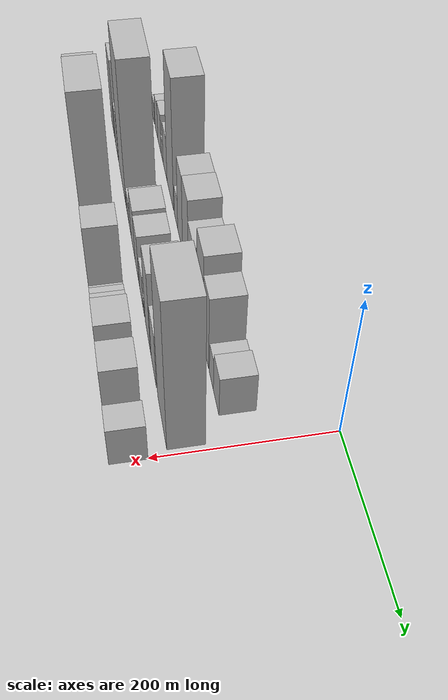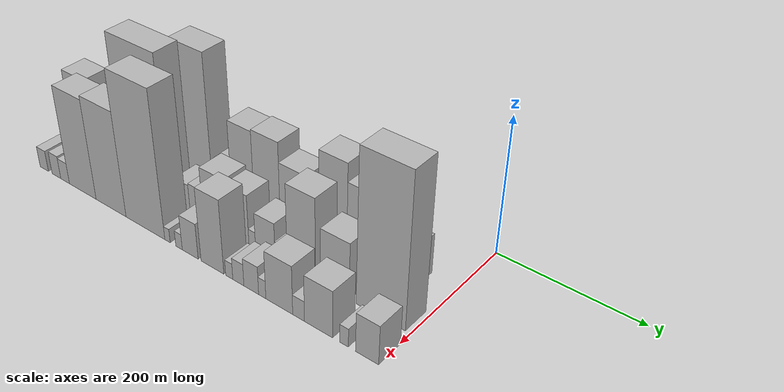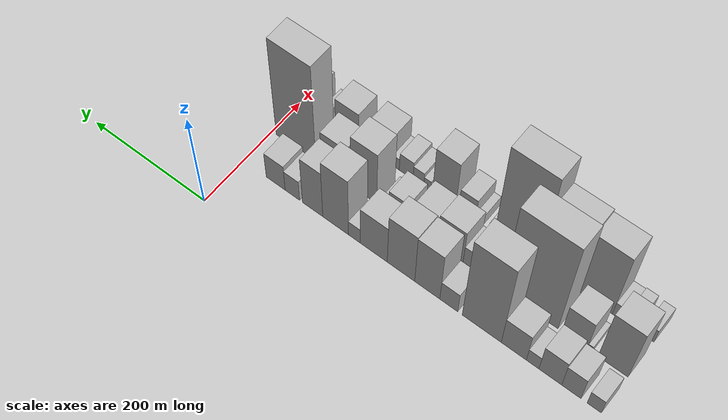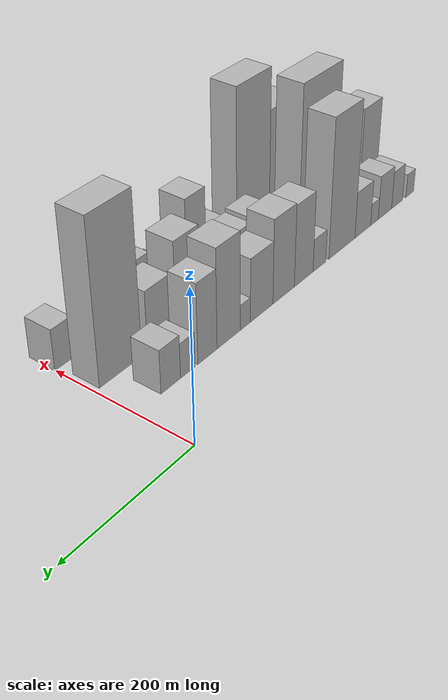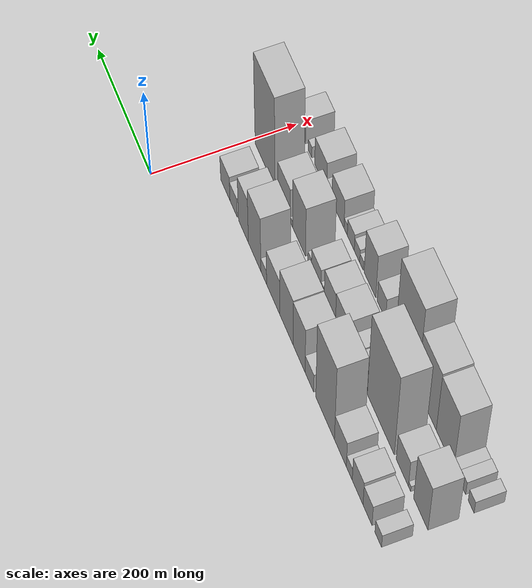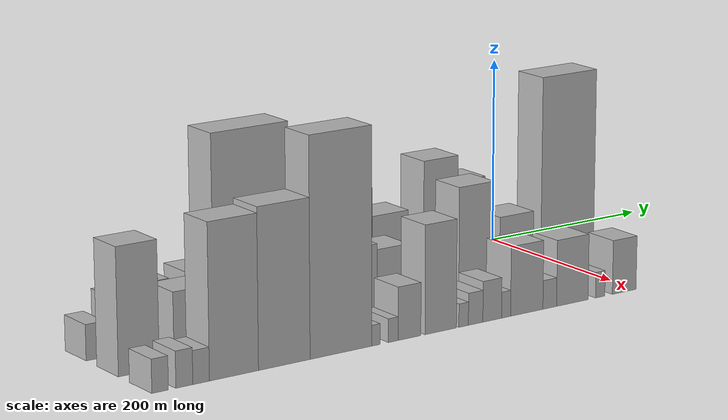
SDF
<sdf version="1.6">
 <world name="default">
  <model name="building_1">
   <static>1</static>
   <pose>100.0000 -569.5218 0 0.000000 0.000000 0.000000</pose>
   <link name="link">
    <pose>0 0 18.00 0 0 0</pose>
    <collision name="collision"><geometry><box><size>40.0000 20.9565 36.0000</size></box></geometry></collision>
    <visual name="visual">
     <cast_shadows>0</cast_shadows>
     <geometry><box><size>40.0000 20.9565 36.0000</size></box></geometry>
     <material>
      <script>
       <uri>model://HANNAS_wall/materials/scripts</uri>
       <uri>model://HANNAS_wall/materials/textures</uri>
       <name>vrc/HANNAS_wall</name>
      </script>
     </material>
    </visual>
   </link>
  </model>
  <model name="building_2">
   <static>1</static>
   <pose>100.0000 -535.7136 0 0.000000 0.000000 0.000000</pose>
   <link name="link">
    <pose>0 0 28.50 0 0 0</pose>
    <collision name="collision"><geometry><box><size>40.0000 28.6598 57.0000</size></box></geometry></collision>
    <visual name="visual">
     <cast_shadows>0</cast_shadows>
     <geometry><box><size>40.0000 28.6598 57.0000</size></box></geometry>
     <material>
      <script>
       <uri>model://HANNAS_wall/materials/scripts</uri>
       <uri>model://HANNAS_wall/materials/textures</uri>
       <name>vrc/HANNAS_wall</name>
      </script>
     </material>
    </visual>
   </link>
  </model>
  <model name="building_3">
   <static>1</static>
   <pose>100.0000 -504.2329 0 0.000000 0.000000 0.000000</pose>
   <link name="link">
    <pose>0 0 33.00 0 0 0</pose>
    <collision name="collision"><geometry><box><size>40.0000 34.3018 66.0000</size></box></geometry></collision>
    <visual name="visual">
     <cast_shadows>0</cast_shadows>
     <geometry><box><size>40.0000 34.3018 66.0000</size></box></geometry>
     <material>
      <script>
       <uri>model://HANNAS_wall/materials/scripts</uri>
       <uri>model://HANNAS_wall/materials/textures</uri>
       <name>vrc/HANNAS_wall</name>
      </script>
     </material>
    </visual>
   </link>
  </model>
  <model name="building_4">
   <static>1</static>
   <pose>100.0000 -477.5409 0 0.000000 0.000000 0.000000</pose>
   <link name="link">
    <pose>0 0 16.50 0 0 0</pose>
    <collision name="collision"><geometry><box><size>40.0000 19.0821 33.0000</size></box></geometry></collision>
    <visual name="visual">
     <cast_shadows>0</cast_shadows>
     <geometry><box><size>40.0000 19.0821 33.0000</size></box></geometry>
     <material>
      <script>
       <uri>model://HANNAS_wall/materials/scripts</uri>
       <uri>model://HANNAS_wall/materials/textures</uri>
       <name>vrc/HANNAS_wall</name>
      </script>
     </material>
    </visual>
   </link>
  </model>
  <model name="building_5">
   <static>1</static>
   <pose>100.0000 -448.7226 0 0.000000 0.000000 0.000000</pose>
   <link name="link">
    <pose>0 0 34.50 0 0 0</pose>
    <collision name="collision"><geometry><box><size>40.0000 38.5546 69.0000</size></box></geometry></collision>
    <visual name="visual">
     <cast_shadows>0</cast_shadows>
     <geometry><box><size>40.0000 38.5546 69.0000</size></box></geometry>
     <material>
      <script>
       <uri>model://HANNAS_wall/materials/scripts</uri>
       <uri>model://HANNAS_wall/materials/textures</uri>
       <name>vrc/HANNAS_wall</name>
      </script>
     </material>
    </visual>
   </link>
  </model>
  <model name="building_6">
   <static>1</static>
   <pose>100.0000 -398.8562 0 0.000000 0.000000 0.000000</pose>
   <link name="link">
    <pose>0 0 100.50 0 0 0</pose>
    <collision name="collision"><geometry><box><size>40.0000 61.1781 201.0000</size></box></geometry></collision>
    <visual name="visual">
     <cast_shadows>0</cast_shadows>
     <geometry><box><size>40.0000 61.1781 201.0000</size></box></geometry>
     <material>
      <script>
       <uri>model://HANNAS_wall/materials/scripts</uri>
       <uri>model://HANNAS_wall/materials/textures</uri>
       <name>vrc/HANNAS_wall</name>
      </script>
     </material>
    </visual>
   </link>
  </model>
  <model name="building_7">
   <static>1</static>
   <pose>100.0000 -346.9772 0 0.000000 0.000000 0.000000</pose>
   <link name="link">
    <pose>0 0 24.00 0 0 0</pose>
    <collision name="collision"><geometry><box><size>40.0000 28.5800 48.0000</size></box></geometry></collision>
    <visual name="visual">
     <cast_shadows>0</cast_shadows>
     <geometry><box><size>40.0000 28.5800 48.0000</size></box></geometry>
     <material>
      <script>
       <uri>model://HANNAS_wall/materials/scripts</uri>
       <uri>model://HANNAS_wall/materials/textures</uri>
       <name>vrc/HANNAS_wall</name>
      </script>
     </material>
    </visual>
   </link>
  </model>
  <model name="building_8">
   <static>1</static>
   <pose>100.0000 -312.4542 0 0.000000 0.000000 0.000000</pose>
   <link name="link">
    <pose>0 0 58.50 0 0 0</pose>
    <collision name="collision"><geometry><box><size>40.0000 40.4660 117.0000</size></box></geometry></collision>
    <visual name="visual">
     <cast_shadows>0</cast_shadows>
     <geometry><box><size>40.0000 40.4660 117.0000</size></box></geometry>
     <material>
      <script>
       <uri>model://HANNAS_wall/materials/scripts</uri>
       <uri>model://HANNAS_wall/materials/textures</uri>
       <name>vrc/HANNAS_wall</name>
      </script>
     </material>
    </visual>
   </link>
  </model>
  <model name="building_9">
   <static>1</static>
   <pose>100.0000 -269.7427 0 0.000000 0.000000 0.000000</pose>
   <link name="link">
    <pose>0 0 60.00 0 0 0</pose>
    <collision name="collision"><geometry><box><size>40.0000 44.9570 120.0000</size></box></geometry></collision>
    <visual name="visual">
     <cast_shadows>0</cast_shadows>
     <geometry><box><size>40.0000 44.9570 120.0000</size></box></geometry>
     <material>
      <script>
       <uri>model://HANNAS_wall/materials/scripts</uri>
       <uri>model://HANNAS_wall/materials/textures</uri>
       <name>vrc/HANNAS_wall</name>
      </script>
     </material>
    </visual>
   </link>
  </model>
  <model name="building_10">
   <static>1</static>
   <pose>100.0000 -224.6503 0 0.000000 0.000000 0.000000</pose>
   <link name="link">
    <pose>0 0 45.00 0 0 0</pose>
    <collision name="collision"><geometry><box><size>40.0000 45.2278 90.0000</size></box></geometry></collision>
    <visual name="visual">
     <cast_shadows>0</cast_shadows>
     <geometry><box><size>40.0000 45.2278 90.0000</size></box></geometry>
     <material>
      <script>
       <uri>model://HANNAS_wall/materials/scripts</uri>
       <uri>model://HANNAS_wall/materials/textures</uri>
       <name>vrc/HANNAS_wall</name>
      </script>
     </material>
    </visual>
   </link>
  </model>
  <model name="building_11">
   <static>1</static>
   <pose>100.0000 -192.2849 0 0.000000 0.000000 0.000000</pose>
   <link name="link">
    <pose>0 0 18.00 0 0 0</pose>
    <collision name="collision"><geometry><box><size>40.0000 19.5030 36.0000</size></box></geometry></collision>
    <visual name="visual">
     <cast_shadows>0</cast_shadows>
     <geometry><box><size>40.0000 19.5030 36.0000</size></box></geometry>
     <material>
      <script>
       <uri>model://HANNAS_wall/materials/scripts</uri>
       <uri>model://HANNAS_wall/materials/textures</uri>
       <name>vrc/HANNAS_wall</name>
      </script>
     </material>
    </visual>
   </link>
  </model>
  <model name="building_12">
   <static>1</static>
   <pose>100.0000 -160.6596 0 0.000000 0.000000 0.000000</pose>
   <link name="link">
    <pose>0 0 69.00 0 0 0</pose>
    <collision name="collision"><geometry><box><size>40.0000 43.7476 138.0000</size></box></geometry></collision>
    <visual name="visual">
     <cast_shadows>0</cast_shadows>
     <geometry><box><size>40.0000 43.7476 138.0000</size></box></geometry>
     <material>
      <script>
       <uri>model://HANNAS_wall/materials/scripts</uri>
       <uri>model://HANNAS_wall/materials/textures</uri>
       <name>vrc/HANNAS_wall</name>
      </script>
     </material>
    </visual>
   </link>
  </model>
  <model name="building_13">
   <static>1</static>
   <pose>100.0000 -121.3531 0 0.000000 0.000000 0.000000</pose>
   <link name="link">
    <pose>0 0 55.50 0 0 0</pose>
    <collision name="collision"><geometry><box><size>40.0000 34.8656 111.0000</size></box></geometry></collision>
    <visual name="visual">
     <cast_shadows>0</cast_shadows>
     <geometry><box><size>40.0000 34.8656 111.0000</size></box></geometry>
     <material>
      <script>
       <uri>model://HANNAS_wall/materials/scripts</uri>
       <uri>model://HANNAS_wall/materials/textures</uri>
       <name>vrc/HANNAS_wall</name>
      </script>
     </material>
    </visual>
   </link>
  </model>
  <model name="building_14">
   <static>1</static>
   <pose>100.0000 -86.2994 0 0.000000 0.000000 0.000000</pose>
   <link name="link">
    <pose>0 0 24.00 0 0 0</pose>
    <collision name="collision"><geometry><box><size>40.0000 25.2418 48.0000</size></box></geometry></collision>
    <visual name="visual">
     <cast_shadows>0</cast_shadows>
     <geometry><box><size>40.0000 25.2418 48.0000</size></box></geometry>
     <material>
      <script>
       <uri>model://HANNAS_wall/materials/scripts</uri>
       <uri>model://HANNAS_wall/materials/textures</uri>
       <name>vrc/HANNAS_wall</name>
      </script>
     </material>
    </visual>
   </link>
  </model>
  <model name="building_15">
   <static>1</static>
   <pose>100.0000 -57.0559 0 0.000000 0.000000 0.000000</pose>
   <link name="link">
    <pose>0 0 30.00 0 0 0</pose>
    <collision name="collision"><geometry><box><size>40.0000 33.2452 60.0000</size></box></geometry></collision>
    <visual name="visual">
     <cast_shadows>0</cast_shadows>
     <geometry><box><size>40.0000 33.2452 60.0000</size></box></geometry>
     <material>
      <script>
       <uri>model://HANNAS_wall/materials/scripts</uri>
       <uri>model://HANNAS_wall/materials/textures</uri>
       <name>vrc/HANNAS_wall</name>
      </script>
     </material>
    </visual>
   </link>
  </model>
  <model name="building_36">
   <static>1</static>
   <pose>160.0000 -557.7278 0 0.000000 0.000000 0.000000</pose>
   <link name="link">
    <pose>0 0 63.00 0 0 0</pose>
    <collision name="collision"><geometry><box><size>40.0000 44.5443 126.0000</size></box></geometry></collision>
    <visual name="visual">
     <cast_shadows>0</cast_shadows>
     <geometry><box><size>40.0000 44.5443 126.0000</size></box></geometry>
     <material>
      <script>
       <uri>model://HANNAS_wall/materials/scripts</uri>
       <uri>model://HANNAS_wall/materials/textures</uri>
       <name>vrc/HANNAS_wall</name>
      </script>
     </material>
    </visual>
   </link>
  </model>
  <model name="building_37">
   <static>1</static>
   <pose>160.0000 -522.8158 0 0.000000 0.000000 0.000000</pose>
   <link name="link">
    <pose>0 0 7.50 0 0 0</pose>
    <collision name="collision"><geometry><box><size>40.0000 7.2797 15.0000</size></box></geometry></collision>
    <visual name="visual">
     <cast_shadows>0</cast_shadows>
     <geometry><box><size>40.0000 7.2797 15.0000</size></box></geometry>
     <material>
      <script>
       <uri>model://HANNAS_wall/materials/scripts</uri>
       <uri>model://HANNAS_wall/materials/textures</uri>
       <name>vrc/HANNAS_wall</name>
      </script>
     </material>
    </visual>
   </link>
  </model>
  <model name="building_38">
   <static>1</static>
   <pose>160.0000 -499.9888 0 0.000000 0.000000 0.000000</pose>
   <link name="link">
    <pose>0 0 36.00 0 0 0</pose>
    <collision name="collision"><geometry><box><size>40.0000 38.3744 72.0000</size></box></geometry></collision>
    <visual name="visual">
     <cast_shadows>0</cast_shadows>
     <geometry><box><size>40.0000 38.3744 72.0000</size></box></geometry>
     <material>
      <script>
       <uri>model://HANNAS_wall/materials/scripts</uri>
       <uri>model://HANNAS_wall/materials/textures</uri>
       <name>vrc/HANNAS_wall</name>
      </script>
     </material>
    </visual>
   </link>
  </model>
  <model name="building_39">
   <static>1</static>
   <pose>160.0000 -431.4649 0 0.000000 0.000000 0.000000</pose>
   <link name="link">
    <pose>0 0 109.50 0 0 0</pose>
    <collision name="collision"><geometry><box><size>40.0000 86.6733 219.0000</size></box></geometry></collision>
    <visual name="visual">
     <cast_shadows>0</cast_shadows>
     <geometry><box><size>40.0000 86.6733 219.0000</size></box></geometry>
     <material>
      <script>
       <uri>model://HANNAS_wall/materials/scripts</uri>
       <uri>model://HANNAS_wall/materials/textures</uri>
       <name>vrc/HANNAS_wall</name>
      </script>
     </material>
    </visual>
   </link>
  </model>
  <model name="building_40">
   <static>1</static>
   <pose>160.0000 -382.7187 0 0.000000 0.000000 0.000000</pose>
   <link name="link">
    <pose>0 0 13.50 0 0 0</pose>
    <collision name="collision"><geometry><box><size>40.0000 10.8190 27.0000</size></box></geometry></collision>
    <visual name="visual">
     <cast_shadows>0</cast_shadows>
     <geometry><box><size>40.0000 10.8190 27.0000</size></box></geometry>
     <material>
      <script>
       <uri>model://HANNAS_wall/materials/scripts</uri>
       <uri>model://HANNAS_wall/materials/textures</uri>
       <name>vrc/HANNAS_wall</name>
      </script>
     </material>
    </visual>
   </link>
  </model>
  <model name="building_41">
   <static>1</static>
   <pose>160.0000 -361.7297 0 0.000000 0.000000 0.000000</pose>
   <link name="link">
    <pose>0 0 21.00 0 0 0</pose>
    <collision name="collision"><geometry><box><size>40.0000 25.1591 42.0000</size></box></geometry></collision>
    <visual name="visual">
     <cast_shadows>0</cast_shadows>
     <geometry><box><size>40.0000 25.1591 42.0000</size></box></geometry>
     <material>
      <script>
       <uri>model://HANNAS_wall/materials/scripts</uri>
       <uri>model://HANNAS_wall/materials/textures</uri>
       <name>vrc/HANNAS_wall</name>
      </script>
     </material>
    </visual>
   </link>
  </model>
  <model name="building_42">
   <static>1</static>
   <pose>160.0000 -337.2602 0 0.000000 0.000000 0.000000</pose>
   <link name="link">
    <pose>0 0 22.50 0 0 0</pose>
    <collision name="collision"><geometry><box><size>40.0000 23.7799 45.0000</size></box></geometry></collision>
    <visual name="visual">
     <cast_shadows>0</cast_shadows>
     <geometry><box><size>40.0000 23.7799 45.0000</size></box></geometry>
     <material>
      <script>
       <uri>model://HANNAS_wall/materials/scripts</uri>
       <uri>model://HANNAS_wall/materials/textures</uri>
       <name>vrc/HANNAS_wall</name>
      </script>
     </material>
    </visual>
   </link>
  </model>
  <model name="building_43">
   <static>1</static>
   <pose>160.0000 -304.4522 0 0.000000 0.000000 0.000000</pose>
   <link name="link">
    <pose>0 0 40.50 0 0 0</pose>
    <collision name="collision"><geometry><box><size>40.0000 41.8361 81.0000</size></box></geometry></collision>
    <visual name="visual">
     <cast_shadows>0</cast_shadows>
     <geometry><box><size>40.0000 41.8361 81.0000</size></box></geometry>
     <material>
      <script>
       <uri>model://HANNAS_wall/materials/scripts</uri>
       <uri>model://HANNAS_wall/materials/textures</uri>
       <name>vrc/HANNAS_wall</name>
      </script>
     </material>
    </visual>
   </link>
  </model>
  <model name="building_44">
   <static>1</static>
   <pose>160.0000 -264.6789 0 0.000000 0.000000 0.000000</pose>
   <link name="link">
    <pose>0 0 37.50 0 0 0</pose>
    <collision name="collision"><geometry><box><size>40.0000 37.7105 75.0000</size></box></geometry></collision>
    <visual name="visual">
     <cast_shadows>0</cast_shadows>
     <geometry><box><size>40.0000 37.7105 75.0000</size></box></geometry>
     <material>
      <script>
       <uri>model://HANNAS_wall/materials/scripts</uri>
       <uri>model://HANNAS_wall/materials/textures</uri>
       <name>vrc/HANNAS_wall</name>
      </script>
     </material>
    </visual>
   </link>
  </model>
  <model name="building_45">
   <static>1</static>
   <pose>160.0000 -240.3269 0 0.000000 0.000000 0.000000</pose>
   <link name="link">
    <pose>0 0 12.00 0 0 0</pose>
    <collision name="collision"><geometry><box><size>40.0000 10.9934 24.0000</size></box></geometry></collision>
    <visual name="visual">
     <cast_shadows>0</cast_shadows>
     <geometry><box><size>40.0000 10.9934 24.0000</size></box></geometry>
     <material>
      <script>
       <uri>model://HANNAS_wall/materials/scripts</uri>
       <uri>model://HANNAS_wall/materials/textures</uri>
       <name>vrc/HANNAS_wall</name>
      </script>
     </material>
    </visual>
   </link>
  </model>
  <model name="building_46">
   <static>1</static>
   <pose>160.0000 -218.6511 0 0.000000 0.000000 0.000000</pose>
   <link name="link">
    <pose>0 0 27.00 0 0 0</pose>
    <collision name="collision"><geometry><box><size>40.0000 32.3581 54.0000</size></box></geometry></collision>
    <visual name="visual">
     <cast_shadows>0</cast_shadows>
     <geometry><box><size>40.0000 32.3581 54.0000</size></box></geometry>
     <material>
      <script>
       <uri>model://HANNAS_wall/materials/scripts</uri>
       <uri>model://HANNAS_wall/materials/textures</uri>
       <name>vrc/HANNAS_wall</name>
      </script>
     </material>
    </visual>
   </link>
  </model>
  <model name="building_47">
   <static>1</static>
   <pose>160.0000 -196.5943 0 0.000000 0.000000 0.000000</pose>
   <link name="link">
    <pose>0 0 13.50 0 0 0</pose>
    <collision name="collision"><geometry><box><size>40.0000 11.7554 27.0000</size></box></geometry></collision>
    <visual name="visual">
     <cast_shadows>0</cast_shadows>
     <geometry><box><size>40.0000 11.7554 27.0000</size></box></geometry>
     <material>
      <script>
       <uri>model://HANNAS_wall/materials/scripts</uri>
       <uri>model://HANNAS_wall/materials/textures</uri>
       <name>vrc/HANNAS_wall</name>
      </script>
     </material>
    </visual>
   </link>
  </model>
  <model name="building_48">
   <static>1</static>
   <pose>160.0000 -160.5014 0 0.000000 0.000000 0.000000</pose>
   <link name="link">
    <pose>0 0 61.50 0 0 0</pose>
    <collision name="collision"><geometry><box><size>40.0000 44.4304 123.0000</size></box></geometry></collision>
    <visual name="visual">
     <cast_shadows>0</cast_shadows>
     <geometry><box><size>40.0000 44.4304 123.0000</size></box></geometry>
     <material>
      <script>
       <uri>model://HANNAS_wall/materials/scripts</uri>
       <uri>model://HANNAS_wall/materials/textures</uri>
       <name>vrc/HANNAS_wall</name>
      </script>
     </material>
    </visual>
   </link>
  </model>
  <model name="building_49">
   <static>1</static>
   <pose>160.0000 -134.5462 0 0.000000 0.000000 0.000000</pose>
   <link name="link">
    <pose>0 0 7.50 0 0 0</pose>
    <collision name="collision"><geometry><box><size>40.0000 7.4798 15.0000</size></box></geometry></collision>
    <visual name="visual">
     <cast_shadows>0</cast_shadows>
     <geometry><box><size>40.0000 7.4798 15.0000</size></box></geometry>
     <material>
      <script>
       <uri>model://HANNAS_wall/materials/scripts</uri>
       <uri>model://HANNAS_wall/materials/textures</uri>
       <name>vrc/HANNAS_wall</name>
      </script>
     </material>
    </visual>
   </link>
  </model>
  <model name="building_50">
   <static>1</static>
   <pose>160.0000 -109.0893 0 0.000000 0.000000 0.000000</pose>
   <link name="link">
    <pose>0 0 42.00 0 0 0</pose>
    <collision name="collision"><geometry><box><size>40.0000 43.4341 84.0000</size></box></geometry></collision>
    <visual name="visual">
     <cast_shadows>0</cast_shadows>
     <geometry><box><size>40.0000 43.4341 84.0000</size></box></geometry>
     <material>
      <script>
       <uri>model://HANNAS_wall/materials/scripts</uri>
       <uri>model://HANNAS_wall/materials/textures</uri>
       <name>vrc/HANNAS_wall</name>
      </script>
     </material>
    </visual>
   </link>
  </model>
  <model name="building_51">
   <static>1</static>
   <pose>160.0000 -42.3088 0 0.000000 0.000000 0.000000</pose>
   <link name="link">
    <pose>0 0 111.00 0 0 0</pose>
    <collision name="collision"><geometry><box><size>40.0000 70.1270 222.0000</size></box></geometry></collision>
    <visual name="visual">
     <cast_shadows>0</cast_shadows>
     <geometry><box><size>40.0000 70.1270 222.0000</size></box></geometry>
     <material>
      <script>
       <uri>model://HANNAS_wall/materials/scripts</uri>
       <uri>model://HANNAS_wall/materials/textures</uri>
       <name>vrc/HANNAS_wall</name>
      </script>
     </material>
    </visual>
   </link>
  </model>
  <model name="building_69">
   <static>1</static>
   <pose>220.0000 -571.0981 0 0.000000 0.000000 0.000000</pose>
   <link name="link">
    <pose>0 0 16.50 0 0 0</pose>
    <collision name="collision"><geometry><box><size>40.0000 17.8038 33.0000</size></box></geometry></collision>
    <visual name="visual">
     <cast_shadows>0</cast_shadows>
     <geometry><box><size>40.0000 17.8038 33.0000</size></box></geometry>
     <material>
      <script>
       <uri>model://HANNAS_wall/materials/scripts</uri>
       <uri>model://HANNAS_wall/materials/textures</uri>
       <name>vrc/HANNAS_wall</name>
      </script>
     </material>
    </visual>
   </link>
  </model>
  <model name="building_70">
   <static>1</static>
   <pose>220.0000 -545.0037 0 0.000000 0.000000 0.000000</pose>
   <link name="link">
    <pose>0 0 18.00 0 0 0</pose>
    <collision name="collision"><geometry><box><size>40.0000 18.3848 36.0000</size></box></geometry></collision>
    <visual name="visual">
     <cast_shadows>0</cast_shadows>
     <geometry><box><size>40.0000 18.3848 36.0000</size></box></geometry>
     <material>
      <script>
       <uri>model://HANNAS_wall/materials/scripts</uri>
       <uri>model://HANNAS_wall/materials/textures</uri>
       <name>vrc/HANNAS_wall</name>
      </script>
     </material>
    </visual>
   </link>
  </model>
  <model name="building_71">
   <static>1</static>
   <pose>220.0000 -526.7297 0 0.000000 0.000000 0.000000</pose>
   <link name="link">
    <pose>0 0 16.50 0 0 0</pose>
    <collision name="collision"><geometry><box><size>40.0000 18.1633 33.0000</size></box></geometry></collision>
    <visual name="visual">
     <cast_shadows>0</cast_shadows>
     <geometry><box><size>40.0000 18.1633 33.0000</size></box></geometry>
     <material>
      <script>
       <uri>model://HANNAS_wall/materials/scripts</uri>
       <uri>model://HANNAS_wall/materials/textures</uri>
       <name>vrc/HANNAS_wall</name>
      </script>
     </material>
    </visual>
   </link>
  </model>
  <model name="building_72">
   <static>1</static>
   <pose>220.0000 -490.4843 0 0.000000 0.000000 0.000000</pose>
   <link name="link">
    <pose>0 0 76.50 0 0 0</pose>
    <collision name="collision"><geometry><box><size>40.0000 54.3275 153.0000</size></box></geometry></collision>
    <visual name="visual">
     <cast_shadows>0</cast_shadows>
     <geometry><box><size>40.0000 54.3275 153.0000</size></box></geometry>
     <material>
      <script>
       <uri>model://HANNAS_wall/materials/scripts</uri>
       <uri>model://HANNAS_wall/materials/textures</uri>
       <name>vrc/HANNAS_wall</name>
      </script>
     </material>
    </visual>
   </link>
  </model>
  <model name="building_73">
   <static>1</static>
   <pose>220.0000 -434.0459 0 0.000000 0.000000 0.000000</pose>
   <link name="link">
    <pose>0 0 79.50 0 0 0</pose>
    <collision name="collision"><geometry><box><size>40.0000 58.5492 159.0000</size></box></geometry></collision>
    <visual name="visual">
     <cast_shadows>0</cast_shadows>
     <geometry><box><size>40.0000 58.5492 159.0000</size></box></geometry>
     <material>
      <script>
       <uri>model://HANNAS_wall/materials/scripts</uri>
       <uri>model://HANNAS_wall/materials/textures</uri>
       <name>vrc/HANNAS_wall</name>
      </script>
     </material>
    </visual>
   </link>
  </model>
  <model name="building_74">
   <static>1</static>
   <pose>220.0000 -368.7891 0 0.000000 0.000000 0.000000</pose>
   <link name="link">
    <pose>0 0 109.50 0 0 0</pose>
    <collision name="collision"><geometry><box><size>40.0000 71.9645 219.0000</size></box></geometry></collision>
    <visual name="visual">
     <cast_shadows>0</cast_shadows>
     <geometry><box><size>40.0000 71.9645 219.0000</size></box></geometry>
     <material>
      <script>
       <uri>model://HANNAS_wall/materials/scripts</uri>
       <uri>model://HANNAS_wall/materials/textures</uri>
       <name>vrc/HANNAS_wall</name>
      </script>
     </material>
    </visual>
   </link>
  </model>
  <model name="building_75">
   <static>1</static>
   <pose>220.0000 -327.9953 0 0.000000 0.000000 0.000000</pose>
   <link name="link">
    <pose>0 0 10.50 0 0 0</pose>
    <collision name="collision"><geometry><box><size>40.0000 9.6231 21.0000</size></box></geometry></collision>
    <visual name="visual">
     <cast_shadows>0</cast_shadows>
     <geometry><box><size>40.0000 9.6231 21.0000</size></box></geometry>
     <material>
      <script>
       <uri>model://HANNAS_wall/materials/scripts</uri>
       <uri>model://HANNAS_wall/materials/textures</uri>
       <name>vrc/HANNAS_wall</name>
      </script>
     </material>
    </visual>
   </link>
  </model>
  <model name="building_76">
   <static>1</static>
   <pose>220.0000 -307.4606 0 0.000000 0.000000 0.000000</pose>
   <link name="link">
    <pose>0 0 12.00 0 0 0</pose>
    <collision name="collision"><geometry><box><size>40.0000 11.4464 24.0000</size></box></geometry></collision>
    <visual name="visual">
     <cast_shadows>0</cast_shadows>
     <geometry><box><size>40.0000 11.4464 24.0000</size></box></geometry>
     <material>
      <script>
       <uri>model://HANNAS_wall/materials/scripts</uri>
       <uri>model://HANNAS_wall/materials/textures</uri>
       <name>vrc/HANNAS_wall</name>
      </script>
     </material>
    </visual>
   </link>
  </model>
  <model name="building_77">
   <static>1</static>
   <pose>220.0000 -287.9613 0 0.000000 0.000000 0.000000</pose>
   <link name="link">
    <pose>0 0 27.00 0 0 0</pose>
    <collision name="collision"><geometry><box><size>40.0000 27.5521 54.0000</size></box></geometry></collision>
    <visual name="visual">
     <cast_shadows>0</cast_shadows>
     <geometry><box><size>40.0000 27.5521 54.0000</size></box></geometry>
     <material>
      <script>
       <uri>model://HANNAS_wall/materials/scripts</uri>
       <uri>model://HANNAS_wall/materials/textures</uri>
       <name>vrc/HANNAS_wall</name>
      </script>
     </material>
    </visual>
   </link>
  </model>
  <model name="building_78">
   <static>1</static>
   <pose>220.0000 -249.9857 0 0.000000 0.000000 0.000000</pose>
   <link name="link">
    <pose>0 0 55.50 0 0 0</pose>
    <collision name="collision"><geometry><box><size>40.0000 38.3990 111.0000</size></box></geometry></collision>
    <visual name="visual">
     <cast_shadows>0</cast_shadows>
     <geometry><box><size>40.0000 38.3990 111.0000</size></box></geometry>
     <material>
      <script>
       <uri>model://HANNAS_wall/materials/scripts</uri>
       <uri>model://HANNAS_wall/materials/textures</uri>
       <name>vrc/HANNAS_wall</name>
      </script>
     </material>
    </visual>
   </link>
  </model>
  <model name="building_79">
   <static>1</static>
   <pose>220.0000 -221.9153 0 0.000000 0.000000 0.000000</pose>
   <link name="link">
    <pose>0 0 12.00 0 0 0</pose>
    <collision name="collision"><geometry><box><size>40.0000 11.7419 24.0000</size></box></geometry></collision>
    <visual name="visual">
     <cast_shadows>0</cast_shadows>
     <geometry><box><size>40.0000 11.7419 24.0000</size></box></geometry>
     <material>
      <script>
       <uri>model://HANNAS_wall/materials/scripts</uri>
       <uri>model://HANNAS_wall/materials/textures</uri>
       <name>vrc/HANNAS_wall</name>
      </script>
     </material>
    </visual>
   </link>
  </model>
  <model name="building_80">
   <static>1</static>
   <pose>220.0000 -207.0347 0 0.000000 0.000000 0.000000</pose>
   <link name="link">
    <pose>0 0 16.50 0 0 0</pose>
    <collision name="collision"><geometry><box><size>40.0000 18.0193 33.0000</size></box></geometry></collision>
    <visual name="visual">
     <cast_shadows>0</cast_shadows>
     <geometry><box><size>40.0000 18.0193 33.0000</size></box></geometry>
     <material>
      <script>
       <uri>model://HANNAS_wall/materials/scripts</uri>
       <uri>model://HANNAS_wall/materials/textures</uri>
       <name>vrc/HANNAS_wall</name>
      </script>
     </material>
    </visual>
   </link>
  </model>
  <model name="building_81">
   <static>1</static>
   <pose>220.0000 -186.2970 0 0.000000 0.000000 0.000000</pose>
   <link name="link">
    <pose>0 0 21.00 0 0 0</pose>
    <collision name="collision"><geometry><box><size>40.0000 23.4560 42.0000</size></box></geometry></collision>
    <visual name="visual">
     <cast_shadows>0</cast_shadows>
     <geometry><box><size>40.0000 23.4560 42.0000</size></box></geometry>
     <material>
      <script>
       <uri>model://HANNAS_wall/materials/scripts</uri>
       <uri>model://HANNAS_wall/materials/textures</uri>
       <name>vrc/HANNAS_wall</name>
      </script>
     </material>
    </visual>
   </link>
  </model>
  <model name="building_82">
   <static>1</static>
   <pose>220.0000 -168.8938 0 0.000000 0.000000 0.000000</pose>
   <link name="link">
    <pose>0 0 13.50 0 0 0</pose>
    <collision name="collision"><geometry><box><size>40.0000 11.3505 27.0000</size></box></geometry></collision>
    <visual name="visual">
     <cast_shadows>0</cast_shadows>
     <geometry><box><size>40.0000 11.3505 27.0000</size></box></geometry>
     <material>
      <script>
       <uri>model://HANNAS_wall/materials/scripts</uri>
       <uri>model://HANNAS_wall/materials/textures</uri>
       <name>vrc/HANNAS_wall</name>
      </script>
     </material>
    </visual>
   </link>
  </model>
  <model name="building_83">
   <static>1</static>
   <pose>220.0000 -142.6240 0 0.000000 0.000000 0.000000</pose>
   <link name="link">
    <pose>0 0 36.00 0 0 0</pose>
    <collision name="collision"><geometry><box><size>40.0000 41.1890 72.0000</size></box></geometry></collision>
    <visual name="visual">
     <cast_shadows>0</cast_shadows>
     <geometry><box><size>40.0000 41.1890 72.0000</size></box></geometry>
     <material>
      <script>
       <uri>model://HANNAS_wall/materials/scripts</uri>
       <uri>model://HANNAS_wall/materials/textures</uri>
       <name>vrc/HANNAS_wall</name>
      </script>
     </material>
    </visual>
   </link>
  </model>
  <model name="building_84">
   <static>1</static>
   <pose>220.0000 -113.2231 0 0.000000 0.000000 0.000000</pose>
   <link name="link">
    <pose>0 0 15.00 0 0 0</pose>
    <collision name="collision"><geometry><box><size>40.0000 17.6128 30.0000</size></box></geometry></collision>
    <visual name="visual">
     <cast_shadows>0</cast_shadows>
     <geometry><box><size>40.0000 17.6128 30.0000</size></box></geometry>
     <material>
      <script>
       <uri>model://HANNAS_wall/materials/scripts</uri>
       <uri>model://HANNAS_wall/materials/textures</uri>
       <name>vrc/HANNAS_wall</name>
      </script>
     </material>
    </visual>
   </link>
  </model>
  <model name="building_85">
   <static>1</static>
   <pose>220.0000 -83.8806 0 0.000000 0.000000 0.000000</pose>
   <link name="link">
    <pose>0 0 34.50 0 0 0</pose>
    <collision name="collision"><geometry><box><size>40.0000 41.0722 69.0000</size></box></geometry></collision>
    <visual name="visual">
     <cast_shadows>0</cast_shadows>
     <geometry><box><size>40.0000 41.0722 69.0000</size></box></geometry>
     <material>
      <script>
       <uri>model://HANNAS_wall/materials/scripts</uri>
       <uri>model://HANNAS_wall/materials/textures</uri>
       <name>vrc/HANNAS_wall</name>
      </script>
     </material>
    </visual>
   </link>
  </model>
  <model name="building_86">
   <static>1</static>
   <pose>220.0000 -47.2301 0 0.000000 0.000000 0.000000</pose>
   <link name="link">
    <pose>0 0 13.50 0 0 0</pose>
    <collision name="collision"><geometry><box><size>40.0000 12.2287 27.0000</size></box></geometry></collision>
    <visual name="visual">
     <cast_shadows>0</cast_shadows>
     <geometry><box><size>40.0000 12.2287 27.0000</size></box></geometry>
     <material>
      <script>
       <uri>model://HANNAS_wall/materials/scripts</uri>
       <uri>model://HANNAS_wall/materials/textures</uri>
       <name>vrc/HANNAS_wall</name>
      </script>
     </material>
    </visual>
   </link>
  </model>
  <model name="building_87">
   <static>1</static>
   <pose>220.0000 -15.2345 0 0.000000 0.000000 0.000000</pose>
   <link name="link">
    <pose>0 0 28.50 0 0 0</pose>
    <collision name="collision"><geometry><box><size>40.0000 31.7626 57.0000</size></box></geometry></collision>
    <visual name="visual">
     <cast_shadows>0</cast_shadows>
     <geometry><box><size>40.0000 31.7626 57.0000</size></box></geometry>
     <material>
      <script>
       <uri>model://HANNAS_wall/materials/scripts</uri>
       <uri>model://HANNAS_wall/materials/textures</uri>
       <name>vrc/HANNAS_wall</name>
      </script>
     </material>
    </visual>
   </link>
  </model>
 </world>
</sdf>
